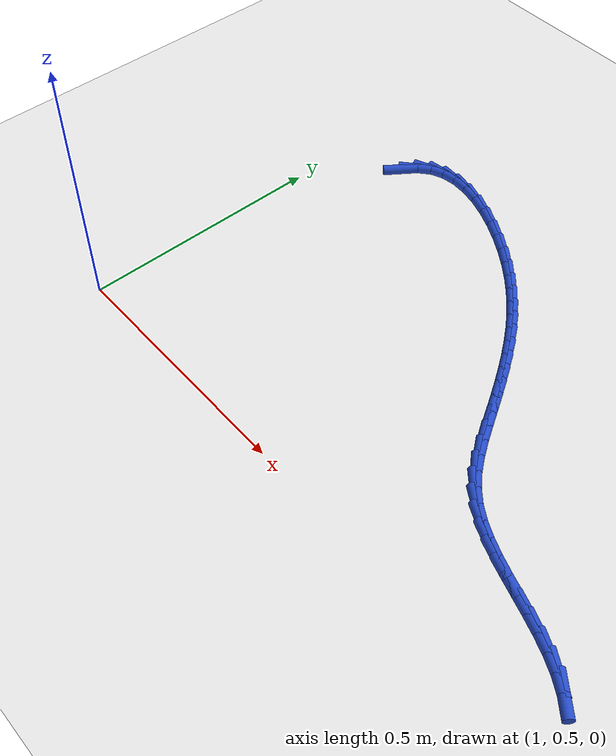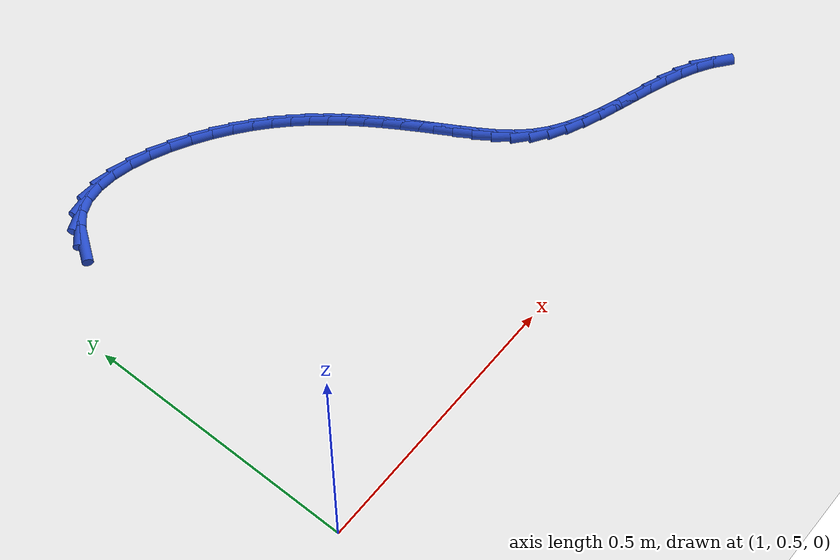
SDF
<sdf version="1.6">
 <world name="default">
  <model name="ground_plane">
   <static>1</static>
   <link name="link">
    <collision name="collision">
     <geometry><plane><normal>0 0 1</normal><size>100 100</size></plane></geometry>
     <surface><friction><ode><mu>100</mu><mu2>50</mu2></ode></friction></surface>
    </collision>
    <visual name="visual">
     <cast_shadows>0</cast_shadows>
     <geometry><plane><normal>0 0 1</normal><size>100 100</size></plane></geometry>
     <material>
      <script><uri>file://media/materials/scripts/gazebo.material</uri><name>Gazebo/WhiteGlow</name></script>
     </material>
    </visual>
   </link>
  </model>
  <model name="line">
   <link name="link_56">
    <pose>1.1299442054143685 1.1735549988091838 0.01 0 1.57 0.94957662426408</pose>
    <collision name="collision">
     <geometry><cylinder><radius>0.01</radius><length>0.08</length></cylinder></geometry>
    </collision>
    <visual name="visual">
     <material>
      <script><name>Gazebo/Blue</name><uri>file://media/materials/scripts/gazebo.material</uri></script>
     </material>
     <geometry><cylinder><radius>0.01</radius><length>0.08</length></cylinder></geometry>
    </visual>
   </link>
   <link name="link_57">
    <pose>1.1487785756594064 1.199869101189001 0.01 0 1.57 0.7165296196188103</pose>
    <collision name="collision">
     <geometry><cylinder><radius>0.01</radius><length>0.08</length></cylinder></geometry>
    </collision>
    <visual name="visual">
     <material>
      <script><name>Gazebo/Blue</name><uri>file://media/materials/scripts/gazebo.material</uri></script>
     </material>
     <geometry><cylinder><radius>0.01</radius><length>0.08</length></cylinder></geometry>
    </visual>
   </link>
   <link name="link_58">
    <pose>1.171273794002101 1.2194612338461794 0.01 0 1.57 0.4020228922208706</pose>
    <collision name="collision">
     <geometry><cylinder><radius>0.01</radius><length>0.08</length></cylinder></geometry>
    </collision>
    <visual name="visual">
     <material>
      <script><name>Gazebo/Blue</name><uri>file://media/materials/scripts/gazebo.material</uri></script>
     </material>
     <geometry><cylinder><radius>0.01</radius><length>0.08</length></cylinder></geometry>
    </visual>
   </link>
   <link name="link_59">
    <pose>1.19812526181939 1.2308779343709386 0.01 0 1.57 0.13208137055408006</pose>
    <collision name="collision">
     <geometry><cylinder><radius>0.01</radius><length>0.08</length></cylinder></geometry>
    </collision>
    <visual name="visual">
     <material>
      <script><name>Gazebo/Blue</name><uri>file://media/materials/scripts/gazebo.material</uri></script>
     </material>
     <geometry><cylinder><radius>0.01</radius><length>0.08</length></cylinder></geometry>
    </visual>
   </link>
   <link name="link_60">
    <pose>1.2285348976816137 1.234918001772757 0.01 0 1.57 -0.07183834856826378</pose>
    <collision name="collision">
     <geometry><cylinder><radius>0.01</radius><length>0.08</length></cylinder></geometry>
    </collision>
    <visual name="visual">
     <material>
      <script><name>Gazebo/Blue</name><uri>file://media/materials/scripts/gazebo.material</uri></script>
     </material>
     <geometry><cylinder><radius>0.01</radius><length>0.08</length></cylinder></geometry>
    </visual>
   </link>
   <link name="link_61">
    <pose>1.261599612649631 1.2325385926674397 0.01 0 1.57 -0.22153232378098164</pose>
    <collision name="collision">
     <geometry><cylinder><radius>0.01</radius><length>0.08</length></cylinder></geometry>
    </collision>
    <visual name="visual">
     <material>
      <script><name>Gazebo/Blue</name><uri>file://media/materials/scripts/gazebo.material</uri></script>
     </material>
     <geometry><cylinder><radius>0.01</radius><length>0.08</length></cylinder></geometry>
    </visual>
   </link>
   <link name="link_62">
    <pose>1.296416317784299 1.2246968636707902 0.01 0 1.57 -0.3332719793162574</pose>
    <collision name="collision">
     <geometry><cylinder><radius>0.01</radius><length>0.08</length></cylinder></geometry>
    </collision>
    <visual name="visual">
     <material>
      <script><name>Gazebo/Blue</name><uri>file://media/materials/scripts/gazebo.material</uri></script>
     </material>
     <geometry><cylinder><radius>0.01</radius><length>0.08</length></cylinder></geometry>
    </visual>
   </link>
   <link name="link_63">
    <pose>1.3320819241464772 1.2123499713986137 0.01 0 1.57 -0.41980840459464075</pose>
    <collision name="collision">
     <geometry><cylinder><radius>0.01</radius><length>0.08</length></cylinder></geometry>
    </collision>
    <visual name="visual">
     <material>
      <script><name>Gazebo/Blue</name><uri>file://media/materials/scripts/gazebo.material</uri></script>
     </material>
     <geometry><cylinder><radius>0.01</radius><length>0.08</length></cylinder></geometry>
    </visual>
   </link>
   <link name="link_64">
    <pose>1.3676933427970226 1.1964550724667147 0.01 0 1.57 -0.490036851172639</pose>
    <collision name="collision">
     <geometry><cylinder><radius>0.01</radius><length>0.08</length></cylinder></geometry>
    </collision>
    <visual name="visual">
     <material>
      <script><name>Gazebo/Blue</name><uri>file://media/materials/scripts/gazebo.material</uri></script>
     </material>
     <geometry><cylinder><radius>0.01</radius><length>0.08</length></cylinder></geometry>
    </visual>
   </link>
   <link name="link_65">
    <pose>1.4023474847967938 1.1779693234908963 0.01 0 1.57 -0.5503059588106858</pose>
    <collision name="collision">
     <geometry><cylinder><radius>0.01</radius><length>0.08</length></cylinder></geometry>
    </collision>
    <visual name="visual">
     <material>
      <script><name>Gazebo/Blue</name><uri>file://media/materials/scripts/gazebo.material</uri></script>
     </material>
     <geometry><cylinder><radius>0.01</radius><length>0.08</length></cylinder></geometry>
    </visual>
   </link>
   <link name="link_66">
    <pose>1.4351431427489032 1.1578483261101857 0.01 0 1.57 -0.6066670999259629</pose>
    <collision name="collision">
     <geometry><cylinder><radius>0.01</radius><length>0.08</length></cylinder></geometry>
    </collision>
    <visual name="visual">
     <material>
      <script><name>Gazebo/Blue</name><uri>file://media/materials/scripts/gazebo.material</uri></script>
     </material>
     <geometry><cylinder><radius>0.01</radius><length>0.08</length></cylinder></geometry>
    </visual>
   </link>
   <link name="link_67">
    <pose>1.4655067152942505 1.1367769361008409 0.01 0 1.57 -0.6630956493104154</pose>
    <collision name="collision">
     <geometry><cylinder><radius>0.01</radius><length>0.08</length></cylinder></geometry>
    </collision>
    <visual name="visual">
     <material>
      <script><name>Gazebo/Blue</name><uri>file://media/materials/scripts/gazebo.material</uri></script>
     </material>
     <geometry><cylinder><radius>0.01</radius><length>0.08</length></cylinder></geometry>
    </visual>
   </link>
   <link name="link_68">
    <pose>1.4935632908578145 1.1148625859117636 0.01 0 1.57 -0.7189431250171929</pose>
    <collision name="collision">
     <geometry><cylinder><radius>0.01</radius><length>0.08</length></cylinder></geometry>
    </collision>
    <visual name="visual">
     <material>
      <script><name>Gazebo/Blue</name><uri>file://media/materials/scripts/gazebo.material</uri></script>
     </material>
     <geometry><cylinder><radius>0.01</radius><length>0.08</length></cylinder></geometry>
    </visual>
   </link>
   <link name="link_69">
    <pose>1.519527691899074 1.0921385484349884 0.01 0 1.57 -0.7730720822306014</pose>
    <collision name="collision">
     <geometry><cylinder><radius>0.01</radius><length>0.08</length></cylinder></geometry>
    </collision>
    <visual name="visual">
     <material>
      <script><name>Gazebo/Blue</name><uri>file://media/materials/scripts/gazebo.material</uri></script>
     </material>
     <geometry><cylinder><radius>0.01</radius><length>0.08</length></cylinder></geometry>
    </visual>
   </link>
   <link name="link_70">
    <pose>1.543614740877509 1.0686380965625477 0.01 0 1.57 -0.8243573896777183</pose>
    <collision name="collision">
     <geometry><cylinder><radius>0.01</radius><length>0.08</length></cylinder></geometry>
    </collision>
    <visual name="visual">
     <material>
      <script><name>Gazebo/Blue</name><uri>file://media/materials/scripts/gazebo.material</uri></script>
     </material>
     <geometry><cylinder><radius>0.01</radius><length>0.08</length></cylinder></geometry>
    </visual>
   </link>
   <link name="link_71">
    <pose>1.5660392602525983 1.0443945031864756 0.01 0 1.57 -0.8717629368289707</pose>
    <collision name="collision">
     <geometry><cylinder><radius>0.01</radius><length>0.08</length></cylinder></geometry>
    </collision>
    <visual name="visual">
     <material>
      <script><name>Gazebo/Blue</name><uri>file://media/materials/scripts/gazebo.material</uri></script>
     </material>
     <geometry><cylinder><radius>0.01</radius><length>0.08</length></cylinder></geometry>
    </visual>
   </link>
   <link name="link_72">
    <pose>1.5870160724838207 1.0194410411988042 0.01 0 1.57 -0.9144025098020466</pose>
    <collision name="collision">
     <geometry><cylinder><radius>0.01</radius><length>0.08</length></cylinder></geometry>
    </collision>
    <visual name="visual">
     <material>
      <script><name>Gazebo/Blue</name><uri>file://media/materials/scripts/gazebo.material</uri></script>
     </material>
     <geometry><cylinder><radius>0.01</radius><length>0.08</length></cylinder></geometry>
    </visual>
   </link>
   <link name="link_73">
    <pose>1.6067600000306557 0.9938109834915674 0.01 0 1.57 -0.9515767544803237</pose>
    <collision name="collision">
     <geometry><cylinder><radius>0.01</radius><length>0.08</length></cylinder></geometry>
    </collision>
    <visual name="visual">
     <material>
      <script><name>Gazebo/Blue</name><uri>file://media/materials/scripts/gazebo.material</uri></script>
     </material>
     <geometry><cylinder><radius>0.01</radius><length>0.08</length></cylinder></geometry>
    </visual>
   </link>
   <link name="link_74">
    <pose>1.6254858653525828 0.9675376029567977 0.01 0 1.57 -0.9827850042102567</pose>
    <collision name="collision">
     <geometry><cylinder><radius>0.01</radius><length>0.08</length></cylinder></geometry>
    </collision>
    <visual name="visual">
     <material>
      <script><name>Gazebo/Blue</name><uri>file://media/materials/scripts/gazebo.material</uri></script>
     </material>
     <geometry><cylinder><radius>0.01</radius><length>0.08</length></cylinder></geometry>
    </visual>
   </link>
   <link name="link_75">
    <pose>1.64340849090908 0.9406541724865288 0.01 0 1.57 -1.0077164919573334</pose>
    <collision name="collision">
     <geometry><cylinder><radius>0.01</radius><length>0.08</length></cylinder></geometry>
    </collision>
    <visual name="visual">
     <material>
      <script><name>Gazebo/Blue</name><uri>file://media/materials/scripts/gazebo.material</uri></script>
     </material>
     <geometry><cylinder><radius>0.01</radius><length>0.08</length></cylinder></geometry>
    </visual>
   </link>
   <link name="link_76">
    <pose>1.6607426991596275 0.9131939649727938 0.01 0 1.57 -1.0262284460696955</pose>
    <collision name="collision">
     <geometry><cylinder><radius>0.01</radius><length>0.08</length></cylinder></geometry>
    </collision>
    <visual name="visual">
     <material>
      <script><name>Gazebo/Blue</name><uri>file://media/materials/scripts/gazebo.material</uri></script>
     </material>
     <geometry><cylinder><radius>0.01</radius><length>0.08</length></cylinder></geometry>
    </visual>
   </link>
   <link name="link_77">
    <pose>1.6777033125637046 0.8851902533076256 0.01 0 1.57 -1.0383187339097864</pose>
    <collision name="collision">
     <geometry><cylinder><radius>0.01</radius><length>0.08</length></cylinder></geometry>
    </collision>
    <visual name="visual">
     <material>
      <script><name>Gazebo/Blue</name><uri>file://media/materials/scripts/gazebo.material</uri></script>
     </material>
     <geometry><cylinder><radius>0.01</radius><length>0.08</length></cylinder></geometry>
    </visual>
   </link>
   <link name="link_78">
    <pose>1.6945051535807893 0.8566763103830576 0.01 0 1.57 -1.0438566949644201</pose>
    <collision name="collision">
     <geometry><cylinder><radius>0.01</radius><length>0.08</length></cylinder></geometry>
    </collision>
    <visual name="visual">
     <material>
      <script><name>Gazebo/Blue</name><uri>file://media/materials/scripts/gazebo.material</uri></script>
     </material>
     <geometry><cylinder><radius>0.01</radius><length>0.08</length></cylinder></geometry>
    </visual>
   </link>
   <link name="link_79">
    <pose>1.7113670539928254 0.8276946793326245 0.01 0 1.57 -1.0339474069853325</pose>
    <collision name="collision">
     <geometry><cylinder><radius>0.01</radius><length>0.08</length></cylinder></geometry>
    </collision>
    <visual name="visual">
     <material>
      <script><name>Gazebo/Blue</name><uri>file://media/materials/scripts/gazebo.material</uri></script>
     </material>
     <geometry><cylinder><radius>0.01</radius><length>0.08</length></cylinder></geometry>
    </visual>
   </link>
   <link name="link_80">
    <pose>1.7286596825656846 0.7986389764506269 0.01 0 1.57 -0.9968244438705487</pose>
    <collision name="collision">
     <geometry><cylinder><radius>0.01</radius><length>0.08</length></cylinder></geometry>
    </collision>
    <visual name="visual">
     <material>
      <script><name>Gazebo/Blue</name><uri>file://media/materials/scripts/gazebo.material</uri></script>
     </material>
     <geometry><cylinder><radius>0.01</radius><length>0.08</length></cylinder></geometry>
    </visual>
   </link>
   <link name="link_81">
    <pose>1.7469486519967792 0.7703535618517914 0.01 0 1.57 -0.9301155802143823</pose>
    <collision name="collision">
     <geometry><cylinder><radius>0.01</radius><length>0.08</length></cylinder></geometry>
    </collision>
    <visual name="visual">
     <material>
      <script><name>Gazebo/Blue</name><uri>file://media/materials/scripts/gazebo.material</uri></script>
     </material>
     <geometry><cylinder><radius>0.01</radius><length>0.08</length></cylinder></geometry>
    </visual>
   </link>
   <link name="link_82">
    <pose>1.766812374831658 0.74371239109608 0.01 0 1.57 -0.8310121227309886</pose>
    <collision name="collision">
     <geometry><cylinder><radius>0.01</radius><length>0.08</length></cylinder></geometry>
    </collision>
    <visual name="visual">
     <material>
      <script><name>Gazebo/Blue</name><uri>file://media/materials/scripts/gazebo.material</uri></script>
     </material>
     <geometry><cylinder><radius>0.01</radius><length>0.08</length></cylinder></geometry>
    </visual>
   </link>
   <link name="link_83">
    <pose>1.7888292636158694 0.719589419743453 0.01 0 1.57 -0.7001910585126275</pose>
    <collision name="collision">
     <geometry><cylinder><radius>0.01</radius><length>0.08</length></cylinder></geometry>
    </collision>
    <visual name="visual">
     <material>
      <script><name>Gazebo/Blue</name><uri>file://media/materials/scripts/gazebo.material</uri></script>
     </material>
     <geometry><cylinder><radius>0.01</radius><length>0.08</length></cylinder></geometry>
    </visual>
   </link>
   <link name="link_84">
    <pose>1.8135228809565447 0.6987822064306941 0.01 0 1.57 -0.5722712090956863</pose>
    <collision name="collision">
     <geometry><cylinder><radius>0.01</radius><length>0.08</length></cylinder></geometry>
    </collision>
    <visual name="visual">
     <material>
      <script><name>Gazebo/Blue</name><uri>file://media/materials/scripts/gazebo.material</uri></script>
     </material>
     <geometry><cylinder><radius>0.01</radius><length>0.08</length></cylinder></geometry>
    </visual>
   </link>
   <link name="link_85">
    <pose>1.8407910040635242 0.6812166938857346 0.01 0 1.57 -0.47128905582695213</pose>
    <collision name="collision">
     <geometry><cylinder><radius>0.01</radius><length>0.08</length></cylinder></geometry>
    </collision>
    <visual name="visual">
     <material>
      <script><name>Gazebo/Blue</name><uri>file://media/materials/scripts/gazebo.material</uri></script>
     </material>
     <geometry><cylinder><radius>0.01</radius><length>0.08</length></cylinder></geometry>
    </visual>
   </link>
   <link name="link_86">
    <pose>1.8701332319053496 0.6662642281789737 0.01 0 1.57 -0.39748958847191723</pose>
    <collision name="collision">
     <geometry><cylinder><radius>0.01</radius><length>0.08</length></cylinder></geometry>
    </collision>
    <visual name="visual">
     <material>
      <script><name>Gazebo/Blue</name><uri>file://media/materials/scripts/gazebo.material</uri></script>
     </material>
     <geometry><cylinder><radius>0.01</radius><length>0.08</length></cylinder></geometry>
    </visual>
   </link>
   <link name="link_87">
    <pose>1.9010427722826728 0.6532872535374056 0.01 0 1.57 -0.3491456392761134</pose>
    <collision name="collision">
     <geometry><cylinder><radius>0.01</radius><length>0.08</length></cylinder></geometry>
    </collision>
    <visual name="visual">
     <material>
      <script><name>Gazebo/Blue</name><uri>file://media/materials/scripts/gazebo.material</uri></script>
     </material>
     <geometry><cylinder><radius>0.01</radius><length>0.08</length></cylinder></geometry>
    </visual>
   </link>
   <link name="link_88">
    <pose>1.9330128329961427 0.6416482141880246 0.01 0 1.57 -0.32444330034704694</pose>
    <collision name="collision">
     <geometry><cylinder><radius>0.01</radius><length>0.08</length></cylinder></geometry>
    </collision>
    <visual name="visual">
     <material>
      <script><name>Gazebo/Blue</name><uri>file://media/materials/scripts/gazebo.material</uri></script>
     </material>
     <geometry><cylinder><radius>0.01</radius><length>0.08</length></cylinder></geometry>
    </visual>
   </link>
   <link name="link_89">
    <pose>1.9655366218464105 0.6307095543578256 0.01 0 1.57 -0.3222734800763926</pose>
    <collision name="collision">
     <geometry><cylinder><radius>0.01</radius><length>0.08</length></cylinder></geometry>
    </collision>
    <visual name="visual">
     <material>
      <script><name>Gazebo/Blue</name><uri>file://media/materials/scripts/gazebo.material</uri></script>
     </material>
     <geometry><cylinder><radius>0.01</radius><length>0.08</length></cylinder></geometry>
    </visual>
   </link>
   <link name="link_90">
    <pose>1.9981073466341275 0.6198337182738027 0.01 0 1.57 -0.342537778962614</pose>
    <collision name="collision">
     <geometry><cylinder><radius>0.01</radius><length>0.08</length></cylinder></geometry>
    </collision>
    <visual name="visual">
     <material>
      <script><name>Gazebo/Blue</name><uri>file://media/materials/scripts/gazebo.material</uri></script>
     </material>
     <geometry><cylinder><radius>0.01</radius><length>0.08</length></cylinder></geometry>
    </visual>
   </link>
   <link name="link_91">
    <pose>2.0302182151599415 0.6083831501629504 0.01 0 1.57 -0.3861724721629688</pose>
    <collision name="collision">
     <geometry><cylinder><radius>0.01</radius><length>0.08</length></cylinder></geometry>
    </collision>
    <visual name="visual">
     <material>
      <script><name>Gazebo/Blue</name><uri>file://media/materials/scripts/gazebo.material</uri></script>
     </material>
     <geometry><cylinder><radius>0.01</radius><length>0.08</length></cylinder></geometry>
    </visual>
   </link>
   <link name="link_92">
    <pose>2.0613624352245057 0.5957202942522632 0.01 0 1.57 -0.4549092637116255</pose>
    <collision name="collision">
     <geometry><cylinder><radius>0.01</radius><length>0.08</length></cylinder></geometry>
    </collision>
    <visual name="visual">
     <material>
      <script><name>Gazebo/Blue</name><uri>file://media/materials/scripts/gazebo.material</uri></script>
     </material>
     <geometry><cylinder><radius>0.01</radius><length>0.08</length></cylinder></geometry>
    </visual>
   </link>
   <link name="link_93">
    <pose>2.0910332146284696 0.5812075947687362 0.01 0 1.57 -0.5506003238818008</pose>
    <collision name="collision">
     <geometry><cylinder><radius>0.01</radius><length>0.08</length></cylinder></geometry>
    </collision>
    <visual name="visual">
     <material>
      <script><name>Gazebo/Blue</name><uri>file://media/materials/scripts/gazebo.material</uri></script>
     </material>
     <geometry><cylinder><radius>0.01</radius><length>0.08</length></cylinder></geometry>
    </visual>
   </link>
   <link name="link_94">
    <pose>2.1187237611724825 0.5642074959393626 0.01 0 1.57 -0.6725928299341725</pose>
    <collision name="collision">
     <geometry><cylinder><radius>0.01</radius><length>0.08</length></cylinder></geometry>
    </collision>
    <visual name="visual">
     <material>
      <script><name>Gazebo/Blue</name><uri>file://media/materials/scripts/gazebo.material</uri></script>
     </material>
     <geometry><cylinder><radius>0.01</radius><length>0.08</length></cylinder></geometry>
    </visual>
   </link>
  </model>
 </world>
</sdf>
